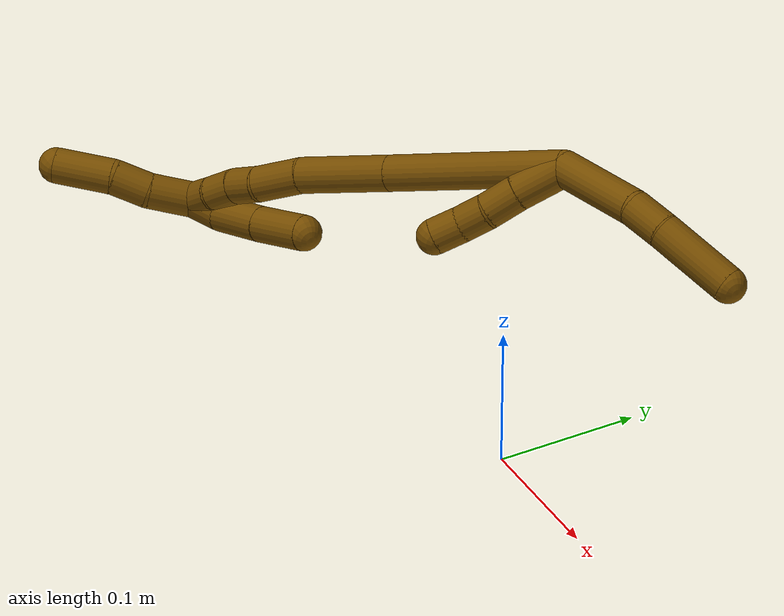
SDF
<sdf version="1.7">
 <world name="default">
  <model name="12">
   <static>0</static>
   <link name="12">
    <collision name="collision-cylinder-e_1_2_8">
     <pose>0.009107 -0.000864 -0.031664 3.11433 0.279945 2.94867</pose>
     <geometry><cylinder><radius>0.0125</radius><length>0.065918</length></cylinder></geometry>
     <surface>
      <friction><ode><mu>1.16</mu><mu2>1.16</mu2><slip1>0</slip1><slip2>0</slip2></ode></friction>
      <contact><ode><kp>1e+06</kp><kd>1</kd><max_vel>0</max_vel><min_depth>0.001</min_depth></ode></contact>
     </surface>
    </collision>
    <visual name="visual-cylinder-e_1_2_8">
     <pose>0.009107 -0.000864 -0.031664 3.11433 0.279945 2.94867</pose>
     <geometry><cylinder><radius>0.0125</radius><length>0.065918</length></cylinder></geometry>
     <material><ambient>0.466667 0.301961 0 1</ambient></material>
    </visual>
    <collision name="collision-cylinder-e_2_8_9">
     <pose>0.02207 0.001085 -0.076148 -2.92566 0.285769 -1.85024</pose>
     <geometry><cylinder><radius>0.0125</radius><length>0.02736</length></cylinder></geometry>
     <surface>
      <friction><ode><mu>1.16</mu><mu2>1.16</mu2><slip1>0</slip1><slip2>0</slip2></ode></friction>
      <contact><ode><kp>1e+06</kp><kd>1</kd><max_vel>0</max_vel><min_depth>0.001</min_depth></ode></contact>
     </surface>
    </collision>
    <visual name="visual-cylinder-e_2_8_9">
     <pose>0.02207 0.001085 -0.076148 -2.92566 0.285769 -1.85024</pose>
     <geometry><cylinder><radius>0.0125</radius><length>0.02736</length></cylinder></geometry>
     <material><ambient>0.466667 0.301961 0 1</ambient></material>
    </visual>
    <collision name="collision-cylinder-e_3_9_6">
     <pose>0.034991 0.013078 -0.114225 -2.79293 0.325327 -1.50025</pose>
     <geometry><cylinder><radius>0.0125</radius><length>0.056723</length></cylinder></geometry>
     <surface>
      <friction><ode><mu>1.16</mu><mu2>1.16</mu2><slip1>0</slip1><slip2>0</slip2></ode></friction>
      <contact><ode><kp>1e+06</kp><kd>1</kd><max_vel>0</max_vel><min_depth>0.001</min_depth></ode></contact>
     </surface>
    </collision>
    <visual name="visual-cylinder-e_3_9_6">
     <pose>0.034991 0.013078 -0.114225 -2.79293 0.325327 -1.50025</pose>
     <geometry><cylinder><radius>0.0125</radius><length>0.056723</length></cylinder></geometry>
     <material><ambient>0.466667 0.301961 0 1</ambient></material>
    </visual>
    <collision name="collision-cylinder-e_1_2_10">
     <pose>-0.015414 0.00693 0.005143 -0.932331 -1.06043 0.573638</pose>
     <geometry><cylinder><radius>0.0125</radius><length>0.035331</length></cylinder></geometry>
     <surface>
      <friction><ode><mu>1.16</mu><mu2>1.16</mu2><slip1>0</slip1><slip2>0</slip2></ode></friction>
      <contact><ode><kp>1e+06</kp><kd>1</kd><max_vel>0</max_vel><min_depth>0.001</min_depth></ode></contact>
     </surface>
    </collision>
    <visual name="visual-cylinder-e_1_2_10">
     <pose>-0.015414 0.00693 0.005143 -0.932331 -1.06043 0.573638</pose>
     <geometry><cylinder><radius>0.0125</radius><length>0.035331</length></cylinder></geometry>
     <material><ambient>0.466667 0.301961 0 1</ambient></material>
    </visual>
    <collision name="collision-cylinder-e_2_10_11">
     <pose>-0.041164 0.019013 0.013193 -1.05715 -1.05083 0.652949</pose>
     <geometry><cylinder><radius>0.0125</radius><length>0.023818</length></cylinder></geometry>
     <surface>
      <friction><ode><mu>1.16</mu><mu2>1.16</mu2><slip1>0</slip1><slip2>0</slip2></ode></friction>
      <contact><ode><kp>1e+06</kp><kd>1</kd><max_vel>0</max_vel><min_depth>0.001</min_depth></ode></contact>
     </surface>
    </collision>
    <visual name="visual-cylinder-e_2_10_11">
     <pose>-0.041164 0.019013 0.013193 -1.05715 -1.05083 0.652949</pose>
     <geometry><cylinder><radius>0.0125</radius><length>0.023818</length></cylinder></geometry>
     <material><ambient>0.466667 0.301961 0 1</ambient></material>
    </visual>
    <collision name="collision-cylinder-e_3_11_12">
     <pose>-0.059567 0.0289 0.02017 -0.860678 -0.912282 0.443057</pose>
     <geometry><cylinder><radius>0.0125</radius><length>0.020404</length></cylinder></geometry>
     <surface>
      <friction><ode><mu>1.16</mu><mu2>1.16</mu2><slip1>0</slip1><slip2>0</slip2></ode></friction>
      <contact><ode><kp>1e+06</kp><kd>1</kd><max_vel>0</max_vel><min_depth>0.001</min_depth></ode></contact>
     </surface>
    </collision>
    <visual name="visual-cylinder-e_3_11_12">
     <pose>-0.059567 0.0289 0.02017 -0.860678 -0.912282 0.443057</pose>
     <geometry><cylinder><radius>0.0125</radius><length>0.020404</length></cylinder></geometry>
     <material><ambient>0.466667 0.301961 0 1</ambient></material>
    </visual>
    <collision name="collision-cylinder-e_4_12_5">
     <pose>-0.076761 0.037002 0.027388 -0.81921 -1.10294 0.52195</pose>
     <geometry><cylinder><radius>0.0125</radius><length>0.020448</length></cylinder></geometry>
     <surface>
      <friction><ode><mu>1.16</mu><mu2>1.16</mu2><slip1>0</slip1><slip2>0</slip2></ode></friction>
      <contact><ode><kp>1e+06</kp><kd>1</kd><max_vel>0</max_vel><min_depth>0.001</min_depth></ode></contact>
     </surface>
    </collision>
    <visual name="visual-cylinder-e_4_12_5">
     <pose>-0.076761 0.037002 0.027388 -0.81921 -1.10294 0.52195</pose>
     <geometry><cylinder><radius>0.0125</radius><length>0.020448</length></cylinder></geometry>
     <material><ambient>0.466667 0.301961 0 1</ambient></material>
    </visual>
    <collision name="collision-cylinder-e_1_2_13">
     <pose>-0.042518 0.015397 0.04771 -0.312175 -0.703395 0.115365</pose>
     <geometry><cylinder><radius>0.0125</radius><length>0.13147</length></cylinder></geometry>
     <surface>
      <friction><ode><mu>1.16</mu><mu2>1.16</mu2><slip1>0</slip1><slip2>0</slip2></ode></friction>
      <contact><ode><kp>1e+06</kp><kd>1</kd><max_vel>0</max_vel><min_depth>0.001</min_depth></ode></contact>
     </surface>
    </collision>
    <visual name="visual-cylinder-e_1_2_13">
     <pose>-0.042518 0.015397 0.04771 -0.312175 -0.703395 0.115365</pose>
     <geometry><cylinder><radius>0.0125</radius><length>0.13147</length></cylinder></geometry>
     <material><ambient>0.466667 0.301961 0 1</ambient></material>
    </visual>
    <collision name="collision-cylinder-e_2_13_14">
     <pose>-0.107256 0.038579 0.120206 -0.304321 -0.707523 0.11314</pose>
     <geometry><cylinder><radius>0.0125</radius><length>0.068372</length></cylinder></geometry>
     <surface>
      <friction><ode><mu>1.16</mu><mu2>1.16</mu2><slip1>0</slip1><slip2>0</slip2></ode></friction>
      <contact><ode><kp>1e+06</kp><kd>1</kd><max_vel>0</max_vel><min_depth>0.001</min_depth></ode></contact>
     </surface>
    </collision>
    <visual name="visual-cylinder-e_2_13_14">
     <pose>-0.107256 0.038579 0.120206 -0.304321 -0.707523 0.11314</pose>
     <geometry><cylinder><radius>0.0125</radius><length>0.068372</length></cylinder></geometry>
     <material><ambient>0.466667 0.301961 0 1</ambient></material>
    </visual>
    <collision name="collision-cylinder-e_3_14_15">
     <pose>-0.141162 0.052744 0.156434 -0.508634 -0.728497 0.197569</pose>
     <geometry><cylinder><radius>0.0125</radius><length>0.035111</length></cylinder></geometry>
     <surface>
      <friction><ode><mu>1.16</mu><mu2>1.16</mu2><slip1>0</slip1><slip2>0</slip2></ode></friction>
      <contact><ode><kp>1e+06</kp><kd>1</kd><max_vel>0</max_vel><min_depth>0.001</min_depth></ode></contact>
     </surface>
    </collision>
    <visual name="visual-cylinder-e_3_14_15">
     <pose>-0.141162 0.052744 0.156434 -0.508634 -0.728497 0.197569</pose>
     <geometry><cylinder><radius>0.0125</radius><length>0.035111</length></cylinder></geometry>
     <material><ambient>0.466667 0.301961 0 1</ambient></material>
    </visual>
    <collision name="collision-cylinder-e_4_15_16">
     <pose>-0.158288 0.06336 0.176257 -0.468056 -0.524853 0.127902</pose>
     <geometry><cylinder><radius>0.0125</radius><length>0.021706</length></cylinder></geometry>
     <surface>
      <friction><ode><mu>1.16</mu><mu2>1.16</mu2><slip1>0</slip1><slip2>0</slip2></ode></friction>
      <contact><ode><kp>1e+06</kp><kd>1</kd><max_vel>0</max_vel><min_depth>0.001</min_depth></ode></contact>
     </surface>
    </collision>
    <visual name="visual-cylinder-e_4_15_16">
     <pose>-0.158288 0.06336 0.176257 -0.468056 -0.524853 0.127902</pose>
     <geometry><cylinder><radius>0.0125</radius><length>0.021706</length></cylinder></geometry>
     <material><ambient>0.466667 0.301961 0 1</ambient></material>
    </visual>
    <collision name="collision-cylinder-e_5_16_17">
     <pose>-0.169667 0.073037 0.191501 -0.670226 -0.596078 0.213145</pose>
     <geometry><cylinder><radius>0.0125</radius><length>0.021162</length></cylinder></geometry>
     <surface>
      <friction><ode><mu>1.16</mu><mu2>1.16</mu2><slip1>0</slip1><slip2>0</slip2></ode></friction>
      <contact><ode><kp>1e+06</kp><kd>1</kd><max_vel>0</max_vel><min_depth>0.001</min_depth></ode></contact>
     </surface>
    </collision>
    <visual name="visual-cylinder-e_5_16_17">
     <pose>-0.169667 0.073037 0.191501 -0.670226 -0.596078 0.213145</pose>
     <geometry><cylinder><radius>0.0125</radius><length>0.021162</length></cylinder></geometry>
     <material><ambient>0.466667 0.301961 0 1</ambient></material>
    </visual>
    <collision name="collision-cylinder-e_6_17_1">
     <pose>-0.180234 0.084692 0.206296 -0.664749 -0.430406 0.150619</pose>
     <geometry><cylinder><radius>0.0125</radius><length>0.022179</length></cylinder></geometry>
     <surface>
      <friction><ode><mu>1.16</mu><mu2>1.16</mu2><slip1>0</slip1><slip2>0</slip2></ode></friction>
      <contact><ode><kp>1e+06</kp><kd>1</kd><max_vel>0</max_vel><min_depth>0.001</min_depth></ode></contact>
     </surface>
    </collision>
    <visual name="visual-cylinder-e_6_17_1">
     <pose>-0.180234 0.084692 0.206296 -0.664749 -0.430406 0.150619</pose>
     <geometry><cylinder><radius>0.0125</radius><length>0.022179</length></cylinder></geometry>
     <material><ambient>0.466667 0.301961 0 1</ambient></material>
    </visual>
    <collision name="collision-cylinder-e_1_1_18">
     <pose>-0.179618 0.092188 0.20388 -3.01867 0.465931 -2.63407</pose>
     <geometry><cylinder><radius>0.0125</radius><length>0.023342</length></cylinder></geometry>
     <surface>
      <friction><ode><mu>1.16</mu><mu2>1.16</mu2><slip1>0</slip1><slip2>0</slip2></ode></friction>
      <contact><ode><kp>1e+06</kp><kd>1</kd><max_vel>0</max_vel><min_depth>0.001</min_depth></ode></contact>
     </surface>
    </collision>
    <visual name="visual-cylinder-e_1_1_18">
     <pose>-0.179618 0.092188 0.20388 -3.01867 0.465931 -2.63407</pose>
     <geometry><cylinder><radius>0.0125</radius><length>0.023342</length></cylinder></geometry>
     <material><ambient>0.466667 0.301961 0 1</ambient></material>
    </visual>
    <collision name="collision-cylinder-e_2_18_19">
     <pose>-0.16663 0.090108 0.176726 2.94438 0.424398 2.28068</pose>
     <geometry><cylinder><radius>0.0125</radius><length>0.037614</length></cylinder></geometry>
     <surface>
      <friction><ode><mu>1.16</mu><mu2>1.16</mu2><slip1>0</slip1><slip2>0</slip2></ode></friction>
      <contact><ode><kp>1e+06</kp><kd>1</kd><max_vel>0</max_vel><min_depth>0.001</min_depth></ode></contact>
     </surface>
    </collision>
    <visual name="visual-cylinder-e_2_18_19">
     <pose>-0.16663 0.090108 0.176726 2.94438 0.424398 2.28068</pose>
     <geometry><cylinder><radius>0.0125</radius><length>0.037614</length></cylinder></geometry>
     <material><ambient>0.466667 0.301961 0 1</ambient></material>
    </visual>
    <collision name="collision-cylinder-e_3_19_4">
     <pose>-0.150217 0.082747 0.142892 2.9107 0.460122 2.2221</pose>
     <geometry><cylinder><radius>0.0125</radius><length>0.039045</length></cylinder></geometry>
     <surface>
      <friction><ode><mu>1.16</mu><mu2>1.16</mu2><slip1>0</slip1><slip2>0</slip2></ode></friction>
      <contact><ode><kp>1e+06</kp><kd>1</kd><max_vel>0</max_vel><min_depth>0.001</min_depth></ode></contact>
     </surface>
    </collision>
    <visual name="visual-cylinder-e_3_19_4">
     <pose>-0.150217 0.082747 0.142892 2.9107 0.460122 2.2221</pose>
     <geometry><cylinder><radius>0.0125</radius><length>0.039045</length></cylinder></geometry>
     <material><ambient>0.466667 0.301961 0 1</ambient></material>
    </visual>
    <collision name="collision-cylinder-e_1_1_20">
     <pose>-0.198345 0.085375 0.221376 0.658832 -0.98018 -0.360815</pose>
     <geometry><cylinder><radius>0.0125</radius><length>0.032467</length></cylinder></geometry>
     <surface>
      <friction><ode><mu>1.16</mu><mu2>1.16</mu2><slip1>0</slip1><slip2>0</slip2></ode></friction>
      <contact><ode><kp>1e+06</kp><kd>1</kd><max_vel>0</max_vel><min_depth>0.001</min_depth></ode></contact>
     </surface>
    </collision>
    <visual name="visual-cylinder-e_1_1_20">
     <pose>-0.198345 0.085375 0.221376 0.658832 -0.98018 -0.360815</pose>
     <geometry><cylinder><radius>0.0125</radius><length>0.032467</length></cylinder></geometry>
     <material><ambient>0.466667 0.301961 0 1</ambient></material>
    </visual>
    <collision name="collision-cylinder-e_2_20_21">
     <pose>-0.220818 0.074931 0.236443 0.55494 -0.767512 -0.228998</pose>
     <geometry><cylinder><radius>0.0125</radius><length>0.025895</length></cylinder></geometry>
     <surface>
      <friction><ode><mu>1.16</mu><mu2>1.16</mu2><slip1>0</slip1><slip2>0</slip2></ode></friction>
      <contact><ode><kp>1e+06</kp><kd>1</kd><max_vel>0</max_vel><min_depth>0.001</min_depth></ode></contact>
     </surface>
    </collision>
    <visual name="visual-cylinder-e_2_20_21">
     <pose>-0.220818 0.074931 0.236443 0.55494 -0.767512 -0.228998</pose>
     <geometry><cylinder><radius>0.0125</radius><length>0.025895</length></cylinder></geometry>
     <material><ambient>0.466667 0.301961 0 1</ambient></material>
    </visual>
    <collision name="collision-cylinder-e_3_21_3">
     <pose>-0.245082 0.067316 0.258249 0.192488 -0.823652 -0.08429</pose>
     <geometry><cylinder><radius>0.0125</radius><length>0.041638</length></cylinder></geometry>
     <surface>
      <friction><ode><mu>1.16</mu><mu2>1.16</mu2><slip1>0</slip1><slip2>0</slip2></ode></friction>
      <contact><ode><kp>1e+06</kp><kd>1</kd><max_vel>0</max_vel><min_depth>0.001</min_depth></ode></contact>
     </surface>
    </collision>
    <visual name="visual-cylinder-e_3_21_3">
     <pose>-0.245082 0.067316 0.258249 0.192488 -0.823652 -0.08429</pose>
     <geometry><cylinder><radius>0.0125</radius><length>0.041638</length></cylinder></geometry>
     <material><ambient>0.466667 0.301961 0 1</ambient></material>
    </visual>
    <collision name="collision-sphere-3">
     <pose>-0.260355 0.064609 0.272135 0 -0 0</pose>
     <geometry><sphere><radius>0.0125</radius></sphere></geometry>
     <surface>
      <friction><ode><mu>1.16</mu><mu2>1.16</mu2><slip1>0</slip1><slip2>0</slip2></ode></friction>
      <contact><ode><kp>1e+06</kp><kd>1</kd><max_vel>0</max_vel><min_depth>0.001</min_depth></ode></contact>
     </surface>
    </collision>
    <visual name="visual-sphere-3">
     <pose>-0.260355 0.064609 0.272135 0 -0 0</pose>
     <geometry><sphere><radius>0.0125</radius></sphere></geometry>
     <material><ambient>0.466667 0.301961 0 1</ambient></material>
    </visual>
    <collision name="collision-sphere-21">
     <pose>-0.229808 0.070022 0.244362 0 -0 0</pose>
     <geometry><sphere><radius>0.0125</radius></sphere></geometry>
     <surface>
      <friction><ode><mu>1.16</mu><mu2>1.16</mu2><slip1>0</slip1><slip2>0</slip2></ode></friction>
      <contact><ode><kp>1e+06</kp><kd>1</kd><max_vel>0</max_vel><min_depth>0.001</min_depth></ode></contact>
     </surface>
    </collision>
    <visual name="visual-sphere-21">
     <pose>-0.229808 0.070022 0.244362 0 -0 0</pose>
     <geometry><sphere><radius>0.0125</radius></sphere></geometry>
     <material><ambient>0.466667 0.301961 0 1</ambient></material>
    </visual>
    <collision name="collision-sphere-20">
     <pose>-0.211828 0.079841 0.228524 0 -0 0</pose>
     <geometry><sphere><radius>0.0125</radius></sphere></geometry>
     <surface>
      <friction><ode><mu>1.16</mu><mu2>1.16</mu2><slip1>0</slip1><slip2>0</slip2></ode></friction>
      <contact><ode><kp>1e+06</kp><kd>1</kd><max_vel>0</max_vel><min_depth>0.001</min_depth></ode></contact>
     </surface>
    </collision>
    <visual name="visual-sphere-20">
     <pose>-0.211828 0.079841 0.228524 0 -0 0</pose>
     <geometry><sphere><radius>0.0125</radius></sphere></geometry>
     <material><ambient>0.466667 0.301961 0 1</ambient></material>
    </visual>
    <collision name="collision-sphere-4">
     <pose>-0.141548 0.078744 0.125864 0 -0 0</pose>
     <geometry><sphere><radius>0.0125</radius></sphere></geometry>
     <surface>
      <friction><ode><mu>1.16</mu><mu2>1.16</mu2><slip1>0</slip1><slip2>0</slip2></ode></friction>
      <contact><ode><kp>1e+06</kp><kd>1</kd><max_vel>0</max_vel><min_depth>0.001</min_depth></ode></contact>
     </surface>
    </collision>
    <visual name="visual-sphere-4">
     <pose>-0.141548 0.078744 0.125864 0 -0 0</pose>
     <geometry><sphere><radius>0.0125</radius></sphere></geometry>
     <material><ambient>0.466667 0.301961 0 1</ambient></material>
    </visual>
    <collision name="collision-sphere-11">
     <pose>-0.051499 0.024166 0.0161 0 -0 0</pose>
     <geometry><sphere><radius>0.0125</radius></sphere></geometry>
     <surface>
      <friction><ode><mu>1.16</mu><mu2>1.16</mu2><slip1>0</slip1><slip2>0</slip2></ode></friction>
      <contact><ode><kp>1e+06</kp><kd>1</kd><max_vel>0</max_vel><min_depth>0.001</min_depth></ode></contact>
     </surface>
    </collision>
    <visual name="visual-sphere-11">
     <pose>-0.051499 0.024166 0.0161 0 -0 0</pose>
     <geometry><sphere><radius>0.0125</radius></sphere></geometry>
     <material><ambient>0.466667 0.301961 0 1</ambient></material>
    </visual>
    <collision name="collision-sphere-10">
     <pose>-0.030829 0.013859 0.010286 0 -0 0</pose>
     <geometry><sphere><radius>0.0125</radius></sphere></geometry>
     <surface>
      <friction><ode><mu>1.16</mu><mu2>1.16</mu2><slip1>0</slip1><slip2>0</slip2></ode></friction>
      <contact><ode><kp>1e+06</kp><kd>1</kd><max_vel>0</max_vel><min_depth>0.001</min_depth></ode></contact>
     </surface>
    </collision>
    <visual name="visual-sphere-10">
     <pose>-0.030829 0.013859 0.010286 0 -0 0</pose>
     <geometry><sphere><radius>0.0125</radius></sphere></geometry>
     <material><ambient>0.466667 0.301961 0 1</ambient></material>
    </visual>
    <collision name="collision-sphere-6">
     <pose>0.044055 0.02226 -0.139482 0 -0 0</pose>
     <geometry><sphere><radius>0.0125</radius></sphere></geometry>
     <surface>
      <friction><ode><mu>1.16</mu><mu2>1.16</mu2><slip1>0</slip1><slip2>0</slip2></ode></friction>
      <contact><ode><kp>1e+06</kp><kd>1</kd><max_vel>0</max_vel><min_depth>0.001</min_depth></ode></contact>
     </surface>
    </collision>
    <visual name="visual-sphere-6">
     <pose>0.044055 0.02226 -0.139482 0 -0 0</pose>
     <geometry><sphere><radius>0.0125</radius></sphere></geometry>
     <material><ambient>0.466667 0.301961 0 1</ambient></material>
    </visual>
    <collision name="collision-sphere-9">
     <pose>0.025926 0.003897 -0.088969 0 -0 0</pose>
     <geometry><sphere><radius>0.0125</radius></sphere></geometry>
     <surface>
      <friction><ode><mu>1.16</mu><mu2>1.16</mu2><slip1>0</slip1><slip2>0</slip2></ode></friction>
      <contact><ode><kp>1e+06</kp><kd>1</kd><max_vel>0</max_vel><min_depth>0.001</min_depth></ode></contact>
     </surface>
    </collision>
    <visual name="visual-sphere-9">
     <pose>0.025926 0.003897 -0.088969 0 -0 0</pose>
     <geometry><sphere><radius>0.0125</radius></sphere></geometry>
     <material><ambient>0.466667 0.301961 0 1</ambient></material>
    </visual>
    <collision name="collision-sphere-2">
     <geometry><sphere><radius>0.0125</radius></sphere></geometry>
     <surface>
      <friction><ode><mu>1.16</mu><mu2>1.16</mu2><slip1>0</slip1><slip2>0</slip2></ode></friction>
      <contact><ode><kp>1e+06</kp><kd>1</kd><max_vel>0</max_vel><min_depth>0.001</min_depth></ode></contact>
     </surface>
    </collision>
    <visual name="visual-sphere-2">
     <geometry><sphere><radius>0.0125</radius></sphere></geometry>
     <material><ambient>0.466667 0.301961 0 1</ambient></material>
    </visual>
    <collision name="collision-sphere-19">
     <pose>-0.158886 0.08675 0.159919 0 -0 0</pose>
     <geometry><sphere><radius>0.0125</radius></sphere></geometry>
     <surface>
      <friction><ode><mu>1.16</mu><mu2>1.16</mu2><slip1>0</slip1><slip2>0</slip2></ode></friction>
      <contact><ode><kp>1e+06</kp><kd>1</kd><max_vel>0</max_vel><min_depth>0.001</min_depth></ode></contact>
     </surface>
    </collision>
    <visual name="visual-sphere-19">
     <pose>-0.158886 0.08675 0.159919 0 -0 0</pose>
     <geometry><sphere><radius>0.0125</radius></sphere></geometry>
     <material><ambient>0.466667 0.301961 0 1</ambient></material>
    </visual>
    <collision name="collision-sphere-8">
     <pose>0.018213 -0.001727 -0.063328 0 -0 0</pose>
     <geometry><sphere><radius>0.0125</radius></sphere></geometry>
     <surface>
      <friction><ode><mu>1.16</mu><mu2>1.16</mu2><slip1>0</slip1><slip2>0</slip2></ode></friction>
      <contact><ode><kp>1e+06</kp><kd>1</kd><max_vel>0</max_vel><min_depth>0.001</min_depth></ode></contact>
     </surface>
    </collision>
    <visual name="visual-sphere-8">
     <pose>0.018213 -0.001727 -0.063328 0 -0 0</pose>
     <geometry><sphere><radius>0.0125</radius></sphere></geometry>
     <material><ambient>0.466667 0.301961 0 1</ambient></material>
    </visual>
    <collision name="collision-sphere-12">
     <pose>-0.067636 0.033634 0.02424 0 -0 0</pose>
     <geometry><sphere><radius>0.0125</radius></sphere></geometry>
     <surface>
      <friction><ode><mu>1.16</mu><mu2>1.16</mu2><slip1>0</slip1><slip2>0</slip2></ode></friction>
      <contact><ode><kp>1e+06</kp><kd>1</kd><max_vel>0</max_vel><min_depth>0.001</min_depth></ode></contact>
     </surface>
    </collision>
    <visual name="visual-sphere-12">
     <pose>-0.067636 0.033634 0.02424 0 -0 0</pose>
     <geometry><sphere><radius>0.0125</radius></sphere></geometry>
     <material><ambient>0.466667 0.301961 0 1</ambient></material>
    </visual>
    <collision name="collision-sphere-5">
     <pose>-0.085886 0.040371 0.030536 0 -0 0</pose>
     <geometry><sphere><radius>0.0125</radius></sphere></geometry>
     <surface>
      <friction><ode><mu>1.16</mu><mu2>1.16</mu2><slip1>0</slip1><slip2>0</slip2></ode></friction>
      <contact><ode><kp>1e+06</kp><kd>1</kd><max_vel>0</max_vel><min_depth>0.001</min_depth></ode></contact>
     </surface>
    </collision>
    <visual name="visual-sphere-5">
     <pose>-0.085886 0.040371 0.030536 0 -0 0</pose>
     <geometry><sphere><radius>0.0125</radius></sphere></geometry>
     <material><ambient>0.466667 0.301961 0 1</ambient></material>
    </visual>
    <collision name="collision-sphere-13">
     <pose>-0.085036 0.030795 0.09542 0 -0 0</pose>
     <geometry><sphere><radius>0.0125</radius></sphere></geometry>
     <surface>
      <friction><ode><mu>1.16</mu><mu2>1.16</mu2><slip1>0</slip1><slip2>0</slip2></ode></friction>
      <contact><ode><kp>1e+06</kp><kd>1</kd><max_vel>0</max_vel><min_depth>0.001</min_depth></ode></contact>
     </surface>
    </collision>
    <visual name="visual-sphere-13">
     <pose>-0.085036 0.030795 0.09542 0 -0 0</pose>
     <geometry><sphere><radius>0.0125</radius></sphere></geometry>
     <material><ambient>0.466667 0.301961 0 1</ambient></material>
    </visual>
    <collision name="collision-sphere-14">
     <pose>-0.129475 0.046364 0.144993 0 -0 0</pose>
     <geometry><sphere><radius>0.0125</radius></sphere></geometry>
     <surface>
      <friction><ode><mu>1.16</mu><mu2>1.16</mu2><slip1>0</slip1><slip2>0</slip2></ode></friction>
      <contact><ode><kp>1e+06</kp><kd>1</kd><max_vel>0</max_vel><min_depth>0.001</min_depth></ode></contact>
     </surface>
    </collision>
    <visual name="visual-sphere-14">
     <pose>-0.129475 0.046364 0.144993 0 -0 0</pose>
     <geometry><sphere><radius>0.0125</radius></sphere></geometry>
     <material><ambient>0.466667 0.301961 0 1</ambient></material>
    </visual>
    <collision name="collision-sphere-15">
     <pose>-0.15285 0.059123 0.167875 0 -0 0</pose>
     <geometry><sphere><radius>0.0125</radius></sphere></geometry>
     <surface>
      <friction><ode><mu>1.16</mu><mu2>1.16</mu2><slip1>0</slip1><slip2>0</slip2></ode></friction>
      <contact><ode><kp>1e+06</kp><kd>1</kd><max_vel>0</max_vel><min_depth>0.001</min_depth></ode></contact>
     </surface>
    </collision>
    <visual name="visual-sphere-15">
     <pose>-0.15285 0.059123 0.167875 0 -0 0</pose>
     <geometry><sphere><radius>0.0125</radius></sphere></geometry>
     <material><ambient>0.466667 0.301961 0 1</ambient></material>
    </visual>
    <collision name="collision-sphere-16">
     <pose>-0.163726 0.067597 0.184639 0 -0 0</pose>
     <geometry><sphere><radius>0.0125</radius></sphere></geometry>
     <surface>
      <friction><ode><mu>1.16</mu><mu2>1.16</mu2><slip1>0</slip1><slip2>0</slip2></ode></friction>
      <contact><ode><kp>1e+06</kp><kd>1</kd><max_vel>0</max_vel><min_depth>0.001</min_depth></ode></contact>
     </surface>
    </collision>
    <visual name="visual-sphere-16">
     <pose>-0.163726 0.067597 0.184639 0 -0 0</pose>
     <geometry><sphere><radius>0.0125</radius></sphere></geometry>
     <material><ambient>0.466667 0.301961 0 1</ambient></material>
    </visual>
    <collision name="collision-sphere-17">
     <pose>-0.175607 0.078476 0.198364 0 -0 0</pose>
     <geometry><sphere><radius>0.0125</radius></sphere></geometry>
     <surface>
      <friction><ode><mu>1.16</mu><mu2>1.16</mu2><slip1>0</slip1><slip2>0</slip2></ode></friction>
      <contact><ode><kp>1e+06</kp><kd>1</kd><max_vel>0</max_vel><min_depth>0.001</min_depth></ode></contact>
     </surface>
    </collision>
    <visual name="visual-sphere-17">
     <pose>-0.175607 0.078476 0.198364 0 -0 0</pose>
     <geometry><sphere><radius>0.0125</radius></sphere></geometry>
     <material><ambient>0.466667 0.301961 0 1</ambient></material>
    </visual>
    <collision name="collision-sphere-1">
     <pose>-0.184861 0.090909 0.214228 0 -0 0</pose>
     <geometry><sphere><radius>0.0125</radius></sphere></geometry>
     <surface>
      <friction><ode><mu>1.16</mu><mu2>1.16</mu2><slip1>0</slip1><slip2>0</slip2></ode></friction>
      <contact><ode><kp>1e+06</kp><kd>1</kd><max_vel>0</max_vel><min_depth>0.001</min_depth></ode></contact>
     </surface>
    </collision>
    <visual name="visual-sphere-1">
     <pose>-0.184861 0.090909 0.214228 0 -0 0</pose>
     <geometry><sphere><radius>0.0125</radius></sphere></geometry>
     <material><ambient>0.466667 0.301961 0 1</ambient></material>
    </visual>
    <collision name="collision-sphere-18">
     <pose>-0.174375 0.093466 0.193532 0 -0 0</pose>
     <geometry><sphere><radius>0.0125</radius></sphere></geometry>
     <surface>
      <friction><ode><mu>1.16</mu><mu2>1.16</mu2><slip1>0</slip1><slip2>0</slip2></ode></friction>
      <contact><ode><kp>1e+06</kp><kd>1</kd><max_vel>0</max_vel><min_depth>0.001</min_depth></ode></contact>
     </surface>
    </collision>
    <visual name="visual-sphere-18">
     <pose>-0.174375 0.093466 0.193532 0 -0 0</pose>
     <geometry><sphere><radius>0.0125</radius></sphere></geometry>
     <material><ambient>0.466667 0.301961 0 1</ambient></material>
    </visual>
    <inertial>
     <pose>-0.091616 0.040478 0.085738 0 -0 0</pose>
     <mass>0.75</mass>
     <inertia>
      <ixx>0.000153</ixx>
      <ixy>0</ixy>
      <ixz>0</ixz>
      <iyy>0.000311</iyy>
      <iyz>0</iyz>
      <izz>9.6e-05</izz>
     </inertia>
    </inertial>
   </link>
   <pose>-0.0639 0.080956 0.169212 -1.51343 -0.145574 1.53305</pose>
  </model>
 </world>
</sdf>
